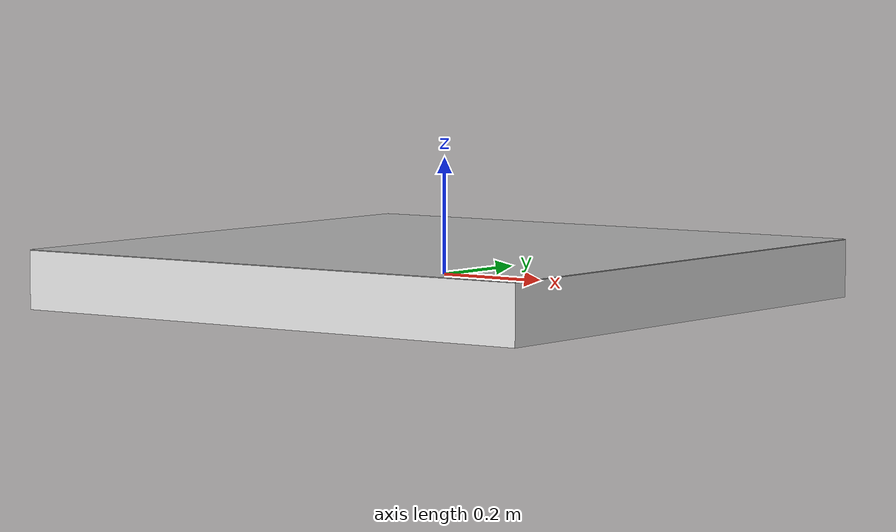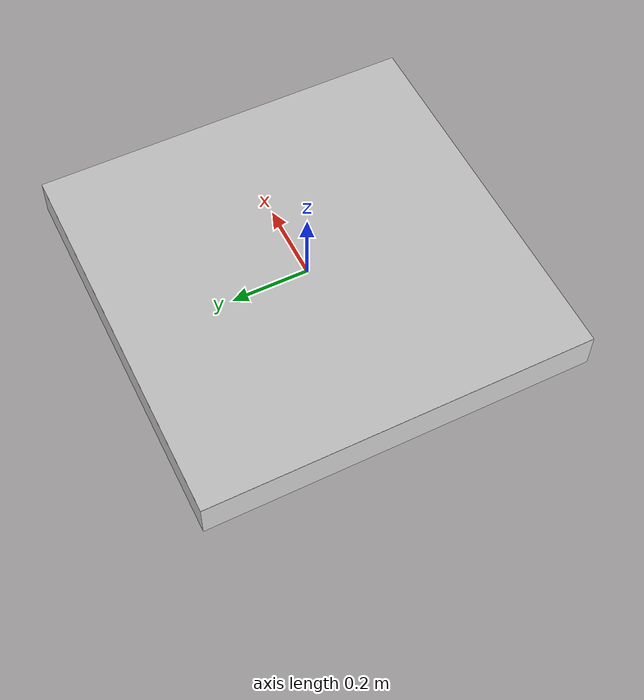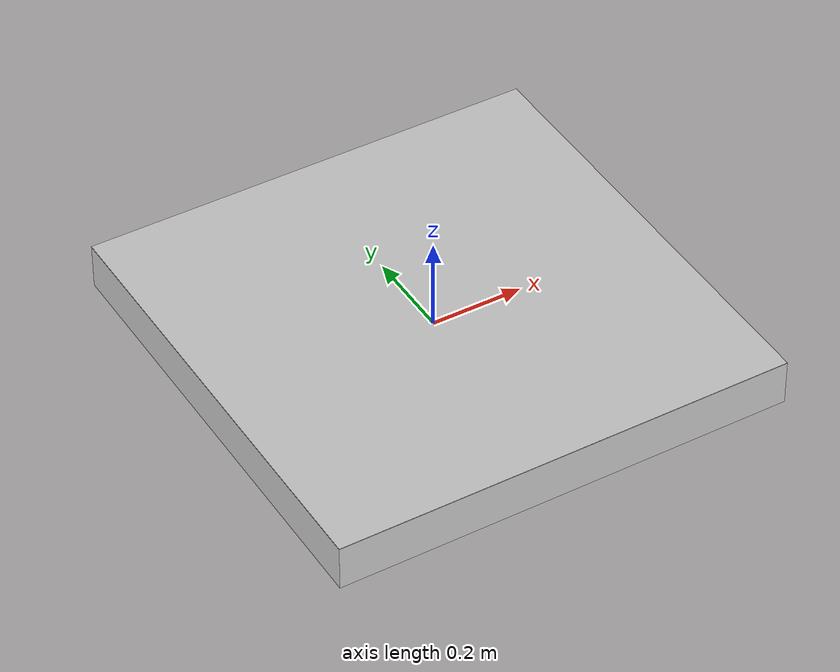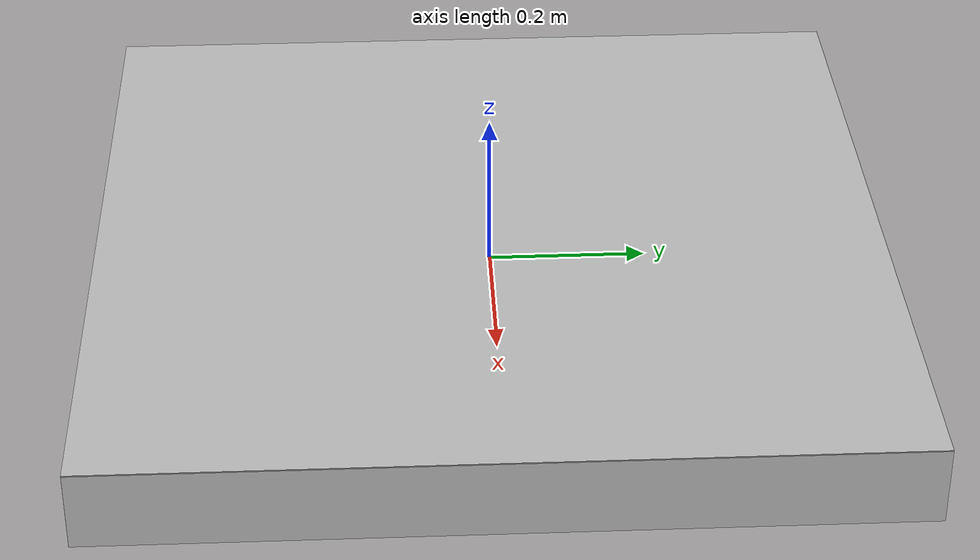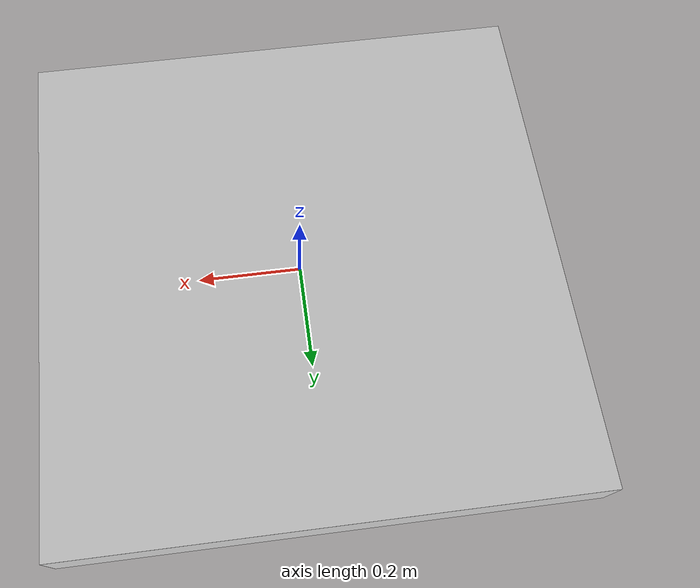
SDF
<?xml version="1.0" ?>
<sdf version="1.9">
  <model name="qr_box">
    <static>true</static>

    <link name="base">
      <!-- Inertial (static model, inertial values are unused by the physics
           engine but must be present and physically plausible to suppress
           Gazebo warnings). -->
      <inertial>
        <mass>5.0</mass>
        <inertia>
          <ixx>0.42</ixx>
          <ixy>0.0</ixy>
          <ixz>0.0</ixz>
          <iyy>0.42</iyy>
          <iyz>0.0</iyz>
          <izz>0.83</izz>
        </inertia>
      </inertial>

      <!-- Collision shape -->
      <collision name="collision">
        <geometry>
          <box>
            <size>1.0 1.0 0.1</size>
          </box>
        </geometry>
        <surface>
          <friction>
            <ode>
              <mu>0.6</mu>
              <mu2>0.6</mu2>
            </ode>
          </friction>
        </surface>
      </collision>

      <!-- White box body -->
      <visual name="body">
        <geometry>
          <box>
            <size>1.0 1.0 0.1</size>
          </box>
        </geometry>
        <material>
          <ambient>0.9 0.9 0.9 1</ambient>
          <diffuse>0.9 0.9 0.9 1</diffuse>
          <specular>0.1 0.1 0.1 1</specular>
        </material>
      </visual>

      <visual name="qr_top">
        <pose>0 0 0.051 0 0 0</pose>
        <geometry>
          <plane>
            <normal>0 0 1</normal>
            <size>1.0 1.0</size>
          </plane>
        </geometry>
        <material>
          <!-- Gazebo Harmonic uses Ogre2/PBR material pipeline.
               The diffuse_map path is relative to the model root directory. -->
          <pbr>
            <metal>
              <albedo_map>materials/textures/qr_code.png</albedo_map>
              <metalness>0.0</metalness>
              <roughness>0.9</roughness>
            </metal>
          </pbr>
        </material>
      </visual>
    </link>
  </model>
</sdf>
